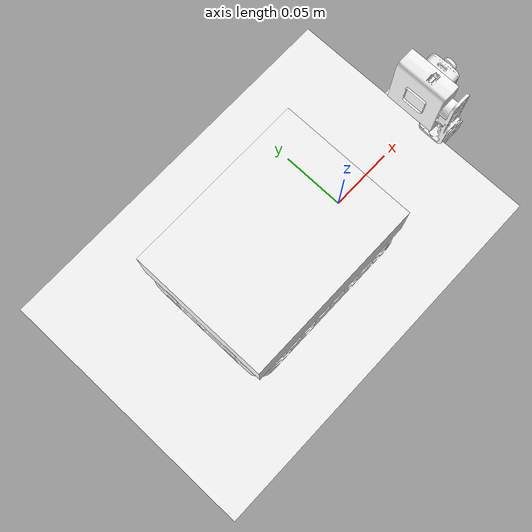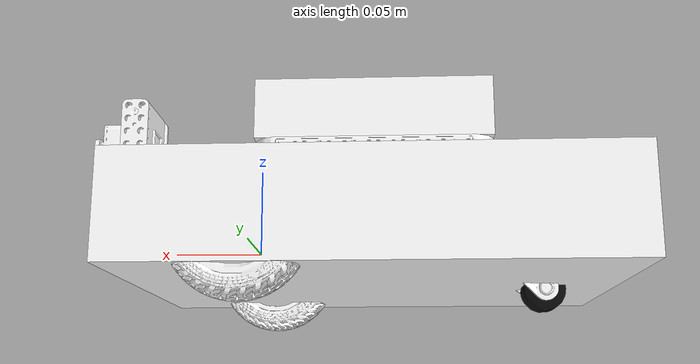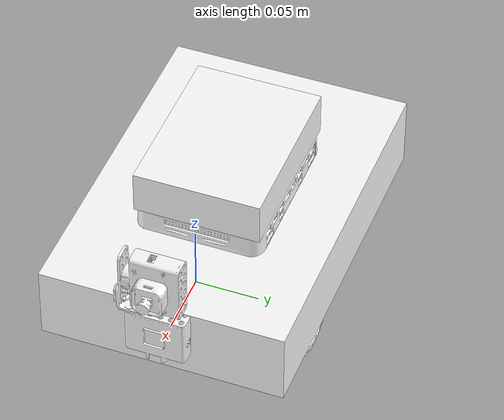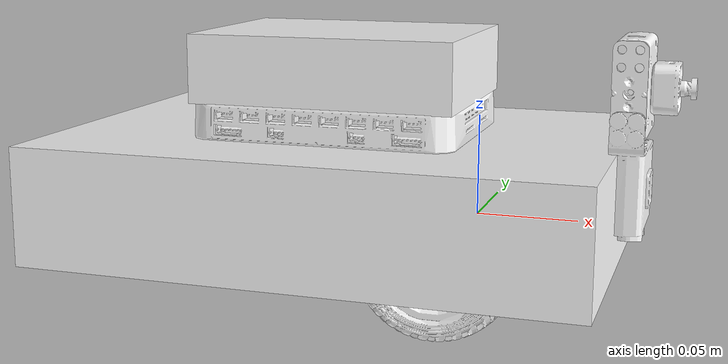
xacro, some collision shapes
<?xml version="1.0"?>
<robot xmlns:xacro="http://www.ros.org/wiki/xacro" name="alex">

    <material name="grey">
        <color rgba="0.75 0.75 0.75 1.0"/>
    </material>

    <material name="red">
        <color rgba="0.8 0 0 1"/>
    </material>

    <material name="black">
        <color rgba="1.0 1.0 1.0 1"/>
    </material>

    <material name="pi-top_green">
        <color rgba="0 0.7 0.64 1"/>
    </material>

    <!-- Gazebo parameters -->
    <gazebo>
        <plugin filename="libgazebo_ros_diff_drive.so" name="differential_drive_controller">
            <legacyMode>false</legacyMode>
            <alwaysOn>true</alwaysOn>
            <updateRate>20</updateRate>
            <leftJoint>baselink_left_wheel_joint</leftJoint>
            <rightJoint>baselink_right_wheel_joint</rightJoint>
            <wheelSeparation>0.175</wheelSeparation>
            <wheelDiameter>0.075</wheelDiameter>
            <torque>0.01</torque>
            <commandTopic>cmd_vel</commandTopic>
            <odometryTopic>odom</odometryTopic>
            <odometryFrame>odom</odometryFrame>
            <robotBaseFrame>base_link</robotBaseFrame>
        </plugin>

        <plugin name="gazebo_ros_control" filename="libgazebo_ros_control.so">
            <robotNamespace>/alex</robotNamespace>
        </plugin>
    </gazebo>

    <!-- Chassis Properties -->
    <xacro:property name="chassis_mesh_path"
                    value="model://alex/meshes/chassis_v2.dae"/>
    <xacro:property name="chassis_mass" value="0.650"/>
    <xacro:property name="chassis_width_x" value="0.192"/>
    <xacro:property name="chassis_depth_y" value="0.059"/>
    <xacro:property name="chassis_height_z" value="0.276"/>
    <xacro:property name="chassis_ixx" value="${(chassis_mass / 12.0) * (chassis_depth_y**2 + chassis_height_z**2)}"/>
    <xacro:property name="chassis_iyy" value="${(chassis_mass / 12.0) * (chassis_width_x**2 + chassis_height_z**2)}"/>
    <xacro:property name="chassis_izz" value="${(chassis_mass / 12.0) * (chassis_width_x**2 + chassis_depth_y**2)}"/>

    <xacro:property name="chassis_origin_z_offset" value="0.017475"/>

    <xacro:macro name="chassis_origin">
        <origin xyz="0 ${-chassis_depth_y/2 - chassis_origin_z_offset} 0" rpy="0 0 0"/>
    </xacro:macro>

    <xacro:macro name="chassis_joint_origin">
        <origin xyz="-0.068 0 0.056475" rpy="${pi/2} 0 ${-pi/2}"/>\
    </xacro:macro>

    <!-- Expansion Plate Properties -->
    <xacro:property name="ep_mesh_path"
                    value="model://alex/meshes/ep.dae"/>
    <xacro:property name="ep_mass" value="0.05"/>
    <xacro:property name="ep_width_x" value="0.1015"/>
    <xacro:property name="ep_depth_y" value="0.018"/>
    <xacro:property name="ep_height_z" value="0.134"/>
    <xacro:property name="ep_ixx" value="${(ep_mass / 12.0) * (ep_depth_y**2 + ep_height_z**2)}"/>
    <xacro:property name="ep_iyy" value="${(ep_mass / 12.0) * (ep_width_x**2 + ep_height_z**2)}"/>
    <xacro:property name="ep_izz" value="${(ep_mass / 12.0) * (ep_width_x**2 + ep_depth_y**2)}"/>

    <xacro:property name="ep_origin_y_offset" value="0.0085"/>

    <xacro:macro name="ep_box_origin">
        <origin xyz="0 -${ep_origin_y_offset} 0" rpy="0 0 0"/>
    </xacro:macro>

    <!-- pi-top [4] Properties -->
    <xacro:property name="pt4_mesh_path"
                    value="model://alex/meshes/4_v3-1.dae"/>
    <xacro:property name="pt4_mass" value="0.390"/>
    <xacro:property name="pt4_width_x" value="0.0995"/>
    <xacro:property name="pt4_depth_y" value="0.034"/>
    <xacro:property name="pt4_height_z" value="0.132"/>
    <xacro:property name="pt4_ixx" value="${(pt4_mass / 12.0) * (pt4_depth_y**2 + pt4_height_z**2)}"/>
    <xacro:property name="pt4_iyy" value="${(pt4_mass / 12.0) * (pt4_width_x**2 + pt4_height_z**2)}"/>
    <xacro:property name="pt4_izz" value="${(pt4_mass / 12.0) * (pt4_width_x**2 + pt4_depth_y**2)}"/>

    <xacro:macro name="pt4_box_origin">
        <origin xyz="0 ${pt4_depth_y/2} 0" rpy="0 0 0"/>
    </xacro:macro>

    <!-- Wheel Properties -->
    <xacro:property name="wheel_mesh_path"
                    value="model://alex/meshes/wheel.dae"/>
    <xacro:property name="wheel_mass" value="0.01"/>
    <xacro:property name="wheel_width" value="0.029"/>
    <xacro:property name="wheel_radius" value="0.0375"/>
    <xacro:property name="wheel_ixx" value="${(wheel_mass / 12.0) * (3 * wheel_radius**2 + wheel_width**2)}"/>
    <xacro:property name="wheel_iyy" value="${wheel_ixx}"/>
    <xacro:property name="wheel_izz" value="${(chassis_mass * wheel_radius**2) / 2}"/>

    <xacro:macro name="left_wheel_mesh_origin">
        <origin xyz="0 0 0" rpy="0 ${pi} 0"/>
    </xacro:macro>

    <xacro:macro name="left_wheel_joint_origin">
        <origin xyz="0 0.0805 0" rpy="${-pi/2} 0 0"/>
    </xacro:macro>

    <xacro:macro name="right_wheel_mesh_origin">
        <origin xyz="0 0 0" rpy="0 0 0"/>
    </xacro:macro>

    <xacro:macro name="right_wheel_joint_origin">
        <origin xyz="0 -0.0805 0" rpy="${-pi/2} 0 0"/>
    </xacro:macro>

    <xacro:property name="wheel_effort" value="" />
    <xacro:property name="wheel_damping" value="" />
    <xacro:property name="wheel_friction" value="" />
    <xacro:property name="wheel_velocity" value="" />

    <xacro:macro name="gazebo_wheel_params" params="link_ref">
        <gazebo reference="${link_ref}">
            <kp>500.0</kp>
            <kd>500.0</kd>
            <mu1>10.0</mu1>
            <mu2>10.0</mu2>
        </gazebo>
    </xacro:macro>

    <!-- Castor Properties -->
    <xacro:property name="castor_mesh_path"
                    value="model://alex/meshes/castor.dae"/>
    <xacro:property name="castor_mass" value="0.001"/>
    <xacro:property name="castor_height" value="0.025"/>
    <xacro:property name="castor_radius" value="0.0162"/>
    <xacro:property name="castor_ixx" value="${(castor_mass / 12.0) * (3 * castor_radius**2 + castor_height**2)}"/>
    <xacro:property name="castor_iyy" value="${castor_ixx}"/>
    <xacro:property name="castor_izz" value="${(castor_mass * castor_radius**2) / 2}"/>

    <xacro:macro name="castor_mesh_origin">
        <origin xyz="0.08 0 0.058515" rpy="${pi/2} 0 ${-pi/2}"/>
    </xacro:macro>

    <xacro:macro name="castor_collision_origin">
        <origin xyz="0 0 ${-castor_height/2}" rpy="0 0 0"/>
    </xacro:macro>

    <xacro:macro name="castor_joint_origin">
        <origin xyz="-0.148 0 -0.00204" rpy="0 0 0"/>
    </xacro:macro>

    <!-- Castor Wheel Properties -->
    <xacro:property name="castor_wheel_mass" value="0.001"/>
    <xacro:property name="castor_wheel_width" value="0.0145"/>
    <xacro:property name="castor_wheel_radius" value="0.0125"/>
    <xacro:property name="castor_wheel_ixx" value="${(castor_wheel_mass / 12.0) * (3 * castor_wheel_radius**2 + castor_wheel_width**2)}"/>
    <xacro:property name="castor_wheel_iyy" value="${castor_wheel_ixx}"/>
    <xacro:property name="castor_wheel_izz" value="${(castor_wheel_mass * castor_wheel_radius**2) / 2}"/>

    <xacro:macro name="castor_wheel_joint_origin">
        <origin xyz="-0.016 0 -0.0205" rpy="${-pi/2} 0 0"/>
    </xacro:macro>

    <xacro:macro name="gazebo_castor_wheel_params" params="link_ref">
        <gazebo reference="${link_ref}">
            <kp>1000.0</kp>
            <kd>1000.0</kd>
            <mu1>10.0</mu1>
            <mu2>10.0</mu2>
        </gazebo>
    </xacro:macro>

    <!-- Pan Mechanism Properties -->
    <xacro:property name="pan_mechanism_mesh_path"
                    value="model://alex/meshes/pan_v2.dae"/>
    <xacro:property name="pan_mechanism_mass" value="0.005"/>
    <xacro:property name="pan_mechanism_width_x" value="0.016"/>
    <xacro:property name="pan_mechanism_depth_y" value="0.0385"/>
    <xacro:property name="pan_mechanism_height_z" value="0.048"/>
    <xacro:property name="pan_mechanism_ixx" value="${(pan_mechanism_mass / 12.0) * (pan_mechanism_depth_y**2 + pan_mechanism_height_z**2)}"/>
    <xacro:property name="pan_mechanism_iyy" value="${(pan_mechanism_mass / 12.0) * (pan_mechanism_width_x**2 + pan_mechanism_height_z**2)}"/>
    <xacro:property name="pan_mechanism_izz" value="${(pan_mechanism_mass / 12.0) * (pan_mechanism_width_x**2 + pan_mechanism_depth_y**2)}"/>

    <xacro:macro name="pan_mechanism_origin">
        <origin xyz="0 0 0" rpy="0 0 0"/>
    </xacro:macro>

    <xacro:macro name="pan_mechanism_joint_origin">
        <origin xyz="0 -0.0372805 -0.142268" rpy="${pi} ${-pi/2} 0"/>
    </xacro:macro>

    <xacro:macro name="servo_params" params="link_ref">
        <gazebo reference="${link_ref}">
            <kp>10000.0</kp>
            <kd>10000.0</kd>
            <mu1>1.0</mu1>
            <mu2>1.0</mu2>
        </gazebo>
    </xacro:macro>

    <!-- Tilt Mechanism Properties -->
    <xacro:property name="tilt_mechanism_mesh_path"
                    value="model://alex/meshes/tilt.dae"/>
    <xacro:property name="tilt_mechanism_mass" value="0.005"/>
    <xacro:property name="tilt_mechanism_width_x" value="0.016"/>
    <xacro:property name="tilt_mechanism_depth_y" value="0.0385"/>
    <xacro:property name="tilt_mechanism_height_z" value="0.048"/>
    <xacro:property name="tilt_mechanism_ixx" value="${(tilt_mechanism_mass / 12.0) * (tilt_mechanism_depth_y**2 + tilt_mechanism_height_z**2)}"/>
    <xacro:property name="tilt_mechanism_iyy" value="${(tilt_mechanism_mass / 12.0) * (tilt_mechanism_width_x**2 + tilt_mechanism_height_z**2)}"/>
    <xacro:property name="tilt_mechanism_izz" value="${(tilt_mechanism_mass / 12.0) * (tilt_mechanism_width_x**2 + tilt_mechanism_depth_y**2)}"/>

    <xacro:macro name="tilt_mechanism_origin">
        <origin xyz="0 0 0" rpy="0 0 0"/>
    </xacro:macro>

    <xacro:macro name="tilt_mechanism_joint_origin">
        <origin xyz="0 -0.04825 -0.000526152" rpy="${pi/2} 0 ${pi}"/>
    </xacro:macro>

    <!-- Camera Module Properties -->
    <xacro:property name="camera_module_mesh_path"
                    value="model://alex/meshes/camera_2.dae"/>
    <xacro:property name="camera_module_mass" value="0.005"/>
    <xacro:property name="camera_module_width_x" value="0.02375"/>
    <xacro:property name="camera_module_depth_y" value="0.0124"/>
    <xacro:property name="camera_module_height_z" value="0.02375"/>
    <xacro:property name="camera_module_ixx" value="${(camera_module_mass / 12.0) * (camera_module_depth_y**2 + camera_module_height_z**2)}"/>
    <xacro:property name="camera_module_iyy" value="${(camera_module_mass / 12.0) * (camera_module_width_x**2 + camera_module_height_z**2)}"/>
    <xacro:property name="camera_module_izz" value="${(camera_module_mass / 12.0) * (camera_module_width_x**2 + camera_module_depth_y**2)}"/>

    <xacro:property name="camera_module_collision_y_offset" value="-0.0031"/>

    <xacro:macro name="camera_module_box_origin">
        <origin xyz="0 ${camera_module_collision_y_offset} 0" rpy="0 0 0"/>
    </xacro:macro>

    <xacro:macro name="camera_module_joint_origin">
        <origin xyz="0.0176 0.00035 0" rpy="0 0 ${-pi/2}"/>
    </xacro:macro>

    <!-- Camera Sensor Properties -->
    <xacro:macro name="camera_sensor_joint_origin">
        <origin xyz="0 0.0014 0" rpy="${pi} 0 ${pi/2}"/>
    </xacro:macro>

    <xacro:property name="camera_hfov_rad" value="${108*pi/180}"/>

    <gazebo reference="camera_sensor">
        <sensor type="camera" name="camera1">
            <update_rate>30.0</update_rate>
            <camera name="pan_tilt_camera">
                <horizontal_fov>${camera_hfov_rad}</horizontal_fov>
                <image>
                    <width>640</width>
                    <height>480</height>
                    <format>R8G8B8</format>
                </image>
                <clip>
                    <near>0.02</near>
                    <far>300</far>
                </clip>
                <noise>
                    <type>gaussian</type>
                    <mean>0.0</mean>
                    <stddev>0.007</stddev>
                </noise>
            </camera>
            <plugin filename="libgazebo_ros_camera.so" name="camera_controller">
                <alwaysOn>true</alwaysOn>
                <updateRate>0.0</updateRate>
                <cameraName>alex/camera1</cameraName>
                <imageTopicName>image_raw</imageTopicName>
                <cameraInfoTopicName>camera_info</cameraInfoTopicName>
                <frameName>camera_sensor</frameName>
                <hackBaseline>0.07</hackBaseline>
                <distortionK1>0.0</distortionK1>
                <distortionK2>0.0</distortionK2>
                <distortionK3>0.0</distortionK3>
                <distortionT1>0.0</distortionT1>
                <distortionT2>0.0</distortionT2>
            </plugin>
        </sensor>
    </gazebo>

    <!-- Generic Macros -->
    <xacro:macro name="x_axis">
        <axis xyz="1 0 0" rpy="0 0 0"/>
    </xacro:macro>

    <xacro:macro name="y_axis">
        <axis xyz="0 1 0" rpy="0 0 0"/>
    </xacro:macro>

    <xacro:macro name="z_axis">
        <axis xyz="0 0 1" rpy="0 0 0"/>
    </xacro:macro>

    <!-- Model Definitions -->

    <link name="base_link">
        <pose>0 0 ${wheel_radius} 0 0 0</pose>
    </link>

    <link name="chassis">
        <inertial>
            <xacro:chassis_origin/>
            <mass value="${chassis_mass}"/>
            <inertia ixx="${chassis_ixx}" ixy="0.0" ixz="0.0" iyy="${chassis_iyy}" iyz="0.0" izz="${chassis_izz}"/>
        </inertial>
        <visual>
            <origin xyz="0 0 0" rpy="0 0 0"/>
            <geometry>
                <mesh filename="${chassis_mesh_path}"/>
            </geometry>
            <material name="black"/>
        </visual>
        <collision>
            <xacro:chassis_origin/>
            <geometry>
                <box size="${chassis_width_x} ${chassis_depth_y} ${chassis_height_z}"/>
            </geometry>
        </collision>
    </link>

    <joint name="baselink_chassis_joint" type="fixed">
    	<parent link="base_link"/>
    	<child link="chassis"/>
    	<xacro:chassis_joint_origin/>
	</joint>

    <gazebo reference="chassis">
        <kp>10000.0</kp>
        <kd>10000.0</kd>
        <mu1>1.0</mu1>
        <mu2>1.0</mu2>
    </gazebo>

    <link name="ep">
        <inertial>
            <xacro:ep_box_origin/>
            <mass value="${ep_mass}"/>
            <inertia ixx="${ep_ixx}" ixy="0.0" ixz="0.0" iyy="${ep_iyy}" iyz="0.0" izz="${ep_izz}"/>
        </inertial>
        <visual>
            <origin xyz="0 0 0" rpy="0 0 0"/>
            <geometry>
                <mesh filename="${ep_mesh_path}"/>
            </geometry>
            <material name="black"/>
        </visual>
        <collision>
            <xacro:ep_box_origin/>
            <geometry>
                <box size="${ep_width_x} ${ep_depth_y} ${ep_height_z}"/>
            </geometry>
        </collision>
    </link>

    <joint name="chassis_ep_joint" type="fixed">
    	<parent link="chassis"/>
    	<child link="ep"/>
	</joint>

    <gazebo reference="ep">
        <kp>10000.0</kp>
        <kd>10000.0</kd>
        <mu1>1.0</mu1>
        <mu2>1.0</mu2>
    </gazebo>

    <link name="pt4">
        <inertial>
            <xacro:pt4_box_origin/>
            <mass value="${pt4_mass}"/>
            <inertia ixx="${pt4_ixx}" ixy="0.0" ixz="0.0" iyy="${pt4_iyy}" iyz="0.0" izz="${pt4_izz}"/>
        </inertial>
        <visual>
            <origin xyz="0 0 0" rpy="0 0 0"/>
            <geometry>
                <mesh filename="${pt4_mesh_path}"/>
            </geometry>
            <material name="black"/>
        </visual>
        <collision>
            <xacro:pt4_box_origin/>
            <geometry>
                <box size="${pt4_width_x} ${pt4_depth_y} ${pt4_height_z}"/>
            </geometry>
        </collision>
    </link>

    <joint name="chassis_pt4_joint" type="fixed">
    	<parent link="chassis"/>
    	<child link="pt4"/>
	</joint>

    <gazebo reference="pt4">
        <kp>10000.0</kp>
        <kd>10000.0</kd>
        <mu1>1.0</mu1>
        <mu2>1.0</mu2>
    </gazebo>

    <link name="right_wheel">
        <inertial>
            <origin rpy="0 0 0" xyz="0 0 0"/>
            <mass value="${wheel_mass}"/>
            <inertia ixx="${wheel_ixx}" ixy="0.0" ixz="0.0" iyy="${wheel_iyy}" iyz="0.0" izz="${wheel_izz}"/>
        </inertial>
        <visual>
            <xacro:right_wheel_mesh_origin/>
            <geometry>
                <mesh filename="${wheel_mesh_path}"/>
            </geometry>
            <material name="black"/>
        </visual>
        <collision>
            <origin rpy="0 0 0" xyz="0 0 0"/>
            <geometry>
                <cylinder radius="${wheel_radius}" length="${wheel_width}"/>
            </geometry>
        </collision>
    </link>

    <joint name="baselink_right_wheel_joint" type="continuous">
    	<parent link="base_link"/>
    	<child link="right_wheel"/>
    	<xacro:right_wheel_joint_origin/>
        <limit effort="0.1" velocity="0.45"/>
        <xacro:z_axis/>
        <joint_properties damping="1.0" friction="1.0"/>
	</joint>

    <link name="left_wheel">
        <inertial>
            <origin rpy="0 0 0" xyz="0 0 0"/>
            <mass value="${wheel_mass}"/>
            <inertia ixx="${wheel_ixx}" ixy="0.0" ixz="0.0" iyy="${wheel_iyy}" iyz="0.0" izz="${wheel_izz}"/>
        </inertial>
        <visual>
            <xacro:left_wheel_mesh_origin/>
            <geometry>
                <mesh filename="${wheel_mesh_path}"/>
            </geometry>
            <material name="black"/>
        </visual>
        <collision>
            <origin rpy="0 0 0" xyz="0 0 0"/>
            <geometry>
                <cylinder radius="${wheel_radius}" length="${wheel_width}"/>
            </geometry>
        </collision>
    </link>

    <joint name="baselink_left_wheel_joint" type="continuous">
    	<parent link="base_link"/>
    	<child link="left_wheel"/>
    	<xacro:left_wheel_joint_origin/>
        <limit effort="0.1" velocity="0.45"/>
        <xacro:z_axis/>
        <joint_properties damping="1.0" friction="1.0"/>
	</joint>

    <link name="castor">
        <inertial>
            <xacro:castor_collision_origin/>
            <mass value="${castor_mass}"/>
            <inertia ixx="${castor_ixx}" ixy="0.0" ixz="0.0" iyy="${castor_iyy}" iyz="0.0" izz="${castor_izz}"/>
        </inertial>
        <visual>
            <xacro:castor_mesh_origin/>
            <geometry>
                <mesh filename="${castor_mesh_path}"/>
            </geometry>
        </visual>
        <collision>
            <xacro:castor_collision_origin/>
            <geometry>
                <cylinder radius="${castor_radius}" length="${castor_height}"/>
            </geometry>
        </collision>
    </link>

    <joint name="baselink_castor_joint" type="continuous">
    	<parent link="base_link"/>
    	<child link="castor"/>
    	<xacro:castor_joint_origin/>
        <limit effort="1.0" velocity="0.45"/>
        <xacro:z_axis/>
        <joint_properties damping="1.0" friction="1.0"/>
	</joint>

    <gazebo reference="castor">
        <kp>10000.0</kp>
        <kd>10000.0</kd>
        <mu1>10.0</mu1>
        <mu2>10.0</mu2>
    </gazebo>

    <link name="castor_wheel">
        <inertial>
            <origin rpy="0 0 0" xyz="0 0 0"/>
            <mass value="${castor_wheel_mass}"/>
            <inertia ixx="${castor_wheel_ixx}" ixy="0.0" ixz="0.0" iyy="${castor_wheel_iyy}" iyz="0.0" izz="${castor_wheel_izz}"/>
        </inertial>
        <collision>
            <origin rpy="0 0 0" xyz="0 0 0"/>
            <geometry>
                <cylinder radius="${castor_wheel_radius}" length="${castor_wheel_width}"/>
            </geometry>
        </collision>
    </link>

    <joint name="castor_castorwheel_joint" type="continuous">
    	<parent link="castor"/>
    	<child link="castor_wheel"/>
    	<xacro:castor_wheel_joint_origin/>
        <limit effort="1.0" velocity="0.45"/>
        <xacro:z_axis/>
        <joint_properties damping="1.0" friction="1.0"/>
	</joint>

    <link name="pan_mechanism">
        <inertial>
            <xacro:pan_mechanism_origin/>
            <mass value="${pan_mechanism_mass}"/>
            <inertia ixx="${pan_mechanism_ixx}" ixy="0.0" ixz="0.0" iyy="${pan_mechanism_iyy}" iyz="0.0" izz="${pan_mechanism_izz}"/>
        </inertial>
        <visual>
            <origin rpy="0 0 0" xyz="0 0 0"/>
            <geometry>
                <mesh filename="${pan_mechanism_mesh_path}"/>
            </geometry>
            <material name="black"/>
        </visual>
        <collision>
            <xacro:pan_mechanism_origin/>
            <geometry>
                <box size="${pan_mechanism_width_x} ${pan_mechanism_depth_y} ${pan_mechanism_height_z}"/>
            </geometry>
        </collision>
    </link>

    <joint name="pan_mechanism_joint" type="revolute">
    	<parent link="chassis"/>
    	<child link="pan_mechanism"/>
    	<xacro:pan_mechanism_joint_origin/>
        <limit lower="${-pi/2}" upper="${pi/2}" effort="1.0" velocity="${100*pi/180}"/>
        <xacro:y_axis/>
        <joint_properties damping="1.0" friction="1.0"/>
	</joint>

    <link name="tilt_mechanism">
        <inertial>
            <xacro:tilt_mechanism_origin/>
            <mass value="${tilt_mechanism_mass}"/>
            <inertia ixx="${tilt_mechanism_ixx}" ixy="0.0" ixz="0.0" iyy="${tilt_mechanism_iyy}" iyz="0.0" izz="${tilt_mechanism_izz}"/>
        </inertial>
        <visual>
            <origin rpy="0 0 0" xyz="0 0 0"/>
            <geometry>
                <mesh filename="${tilt_mechanism_mesh_path}"/>
            </geometry>
            <material name="black"/>
        </visual>
        <collision>
            <xacro:tilt_mechanism_origin/>
            <geometry>
                <box size="${tilt_mechanism_width_x} ${tilt_mechanism_depth_y} ${tilt_mechanism_height_z}"/>
            </geometry>
        </collision>
    </link>

    <joint name="tilt_mechanism_joint" type="revolute">
    	<parent link="pan_mechanism"/>
    	<child link="tilt_mechanism"/>
    	<xacro:tilt_mechanism_joint_origin/>
        <limit lower="${-pi/2}" upper="${pi/2}" effort="1.0" velocity="${100*pi/180}"/>
        <xacro:y_axis/>
        <joint_properties damping="1.0" friction="1.0"/>
	</joint>

    <xacro:gazebo_wheel_params link_ref="left_wheel"/>
    <xacro:gazebo_wheel_params link_ref="right_wheel"/>
    <xacro:gazebo_castor_wheel_params link_ref="castor_wheel"/>
    <xacro:servo_params link_ref="pan_mechanism"/>
    <xacro:servo_params link_ref="tilt_mechanism"/>

    <xacro:macro name="servo_transmission_macro" params="joint servo_type">
        <transmission name="${servo_type}_transmission">
            <type>transmission_interface/SimpleTransmission</type>
            <joint name="${joint}">
                <hardwareInterface>hardware_interface/PositionJointInterface</hardwareInterface>
            </joint>
            <actuator name="${servo_type}_servo_actuator">
                <hardwareInterface>hardware_interface/PositionJointInterface</hardwareInterface>
                <mechanicalReduction>1</mechanicalReduction>
            </actuator>
        </transmission>
    </xacro:macro>

    <xacro:servo_transmission_macro joint="pan_mechanism_joint" servo_type="pan" />
    <xacro:servo_transmission_macro joint="tilt_mechanism_joint" servo_type="tilt" />

    <link name="camera_module">
        <inertial>
            <xacro:camera_module_box_origin/>
            <mass value="${camera_module_mass}"/>
            <inertia ixx="${camera_module_ixx}" ixy="0.0" ixz="0.0" iyy="${camera_module_iyy}" iyz="0.0" izz="${camera_module_izz}"/>
        </inertial>
        <visual>
            <origin rpy="0 0 0" xyz="0 0 0"/>
            <geometry>
                <mesh filename="${camera_module_mesh_path}"/>
            </geometry>
            <material name="black"/>
        </visual>
        <collision>
            <xacro:camera_module_box_origin/>
            <geometry>
                <box size="${camera_module_width_x} ${camera_module_depth_y} ${camera_module_height_z}"/>
            </geometry>
        </collision>
    </link>

    <joint name="camera_module_joint" type="fixed">
    	<parent link="tilt_mechanism"/>
    	<child link="camera_module"/>
    	<xacro:camera_module_joint_origin/>
	</joint>

    <link name="camera_sensor">
        <visual>
            <origin rpy="0 0 0" xyz="0 0 0"/>
            <geometry>
                <box size="0.001 0.001 0.001"/>
            </geometry>
            <material name="red"/>
        </visual>
    </link>

    <joint name="camera_sensor_joint" type="fixed">
    	<parent link="camera_module"/>
    	<child link="camera_sensor"/>
    	<xacro:camera_sensor_joint_origin/>
	</joint>

    <link name="imu_link">
        <visual>
            <origin rpy="0 0 0" xyz="0 0 0"/>
            <geometry>
                <box size="0.001 0.001 0.001"/>
            </geometry>
            <material name="red"/>
        </visual>
    </link>

    <joint name="ep_imu_joint" type="fixed">
    	<parent link="ep"/>
    	<child link="imu_link"/>
    	<xacro:ep_box_origin/>
	</joint>

    <gazebo reference="imu_link">
        <gravity>true</gravity>
        <sensor name="imu_sensor" type="imu">
            <always_on>true</always_on>
            <update_rate>100</update_rate>
            <visualize>true</visualize>
            <topic>__default_topic__</topic>
            <plugin filename="libgazebo_ros_imu_sensor.so" name="imu_plugin">
                <topicName>imu</topicName>
                <bodyName>imu_link</bodyName>
                <updateRateHZ>10.0</updateRateHZ>
                <gaussianNoise>0.0</gaussianNoise>
                <xyzOffset>0 0 0</xyzOffset>
                <rpyOffset>0 0 0</rpyOffset>
                <frameName>imu_link</frameName>
                <initialOrientationAsReference>false</initialOrientationAsReference>
            </plugin>
            <pose>0 0 0 0 0 0</pose>
        </sensor>
    </gazebo>

</robot>
